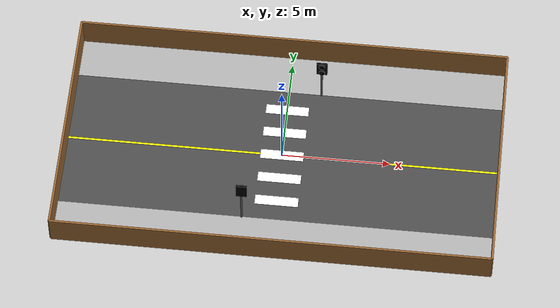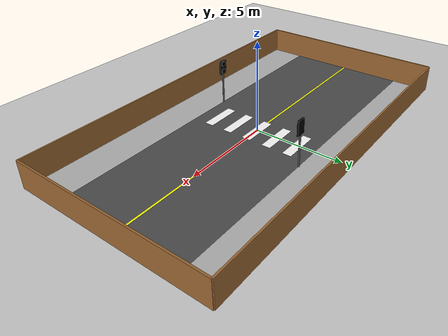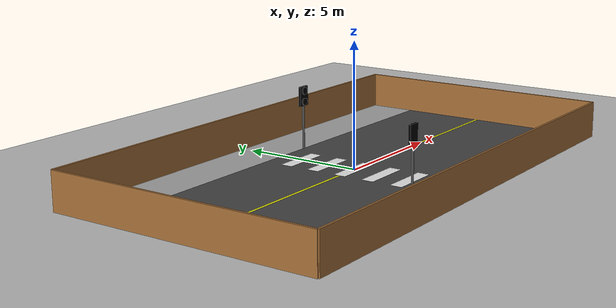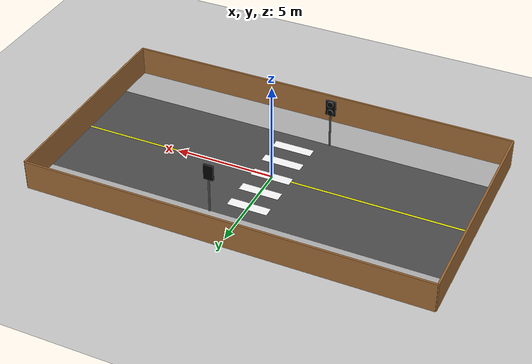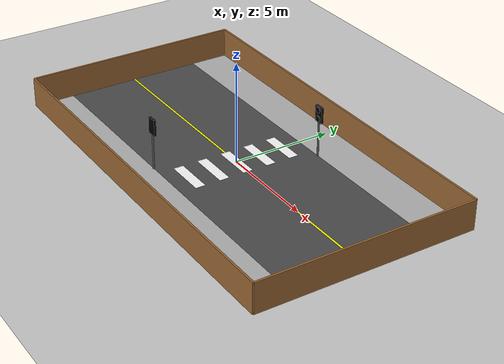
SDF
<?xml version="1.0" ?>
<sdf version="1.6">
  <world name="crossroad">

    <!-- GUI Camera Configuration -->
    <gui>
      <camera name="user_camera">
        <pose>-2.0 -10.0 10.0 0 0.6 1.57</pose>
      </camera>
    </gui>

    <!-- Physics Configuration -->
    <physics name='default_physics' default='0' type='ode'>
      <max_step_size>0.001</max_step_size>
      <real_time_factor>1</real_time_factor>
      <real_time_update_rate>1000</real_time_update_rate>
    </physics>

    <!-- Scene Configuration -->
    <scene>
      <ambient>0.4 0.4 0.4 1</ambient>
      <background>0.7 0.7 0.7 1</background>
      <shadows>1</shadows>
      <grid>false</grid>
    </scene>

    <!-- Sun Light -->
    <light name='sun' type='directional'>
      <cast_shadows>1</cast_shadows>
      <pose>0 0 10 0 0 0</pose>
      <diffuse>0.8 0.8 0.8 1</diffuse>
      <specular>0.2 0.2 0.2 1</specular>
      <attenuation>
        <range>1000</range>
        <constant>0.9</constant>
        <linear>0.01</linear>
        <quadratic>0.001</quadratic>
      </attenuation>
      <direction>-0.5 0.1 -0.9</direction>
    </light>

    <!-- Ground Plane -->
    <model name='ground_plane'>
      <static>1</static>
      <link name='link'>
        <collision name='collision'>
          <geometry>
            <plane>
              <normal>0 0 1</normal>
              <size>100 100</size>
            </plane>
          </geometry>
          <surface>
            <friction>
              <ode>
                <mu>100</mu>
                <mu2>50</mu2>
              </ode>
            </friction>
          </surface>
        </collision>
        <visual name='visual'>
          <cast_shadows>0</cast_shadows>
          <geometry>
            <plane>
              <normal>0 0 1</normal>
              <size>100 100</size>
            </plane>
          </geometry>
          <material>
            <script>
              <uri>file://media/materials/scripts/gazebo.material</uri>
              <name>Gazebo/Grey</name>
            </script>
          </material>
        </visual>
      </link>
    </model>

    <!-- Main Road (Horizontal) -->
    <model name='road_horizontal'>
      <static>1</static>
      <link name='link'>
        <pose>0 0 0.001 0 0 0</pose>
        <collision name='collision'>
          <geometry>
            <box>
              <size>20 7.0 0.01</size>
            </box>
          </geometry>
        </collision>
        <visual name='visual'>
          <geometry>
            <box>
              <size>20 7.0 0.01</size>
            </box>
          </geometry>
          <material>
            <ambient>0.3 0.3 0.3 1</ambient>
            <diffuse>0.3 0.3 0.3 1</diffuse>
          </material>
        </visual>
      </link>
    </model>

    <!-- Road Center Line (Yellow) -->
    <model name='road_center_line'>
      <static>1</static>
      <link name='link'>
        <pose>0 0 0.002 0 0 0</pose>
        <visual name='visual'>
          <geometry>
            <box>
              <size>20 0.1 0.01</size>
            </box>
          </geometry>
          <material>
            <ambient>1 1 0 1</ambient>
            <diffuse>1 1 0 1</diffuse>
          </material>
        </visual>
      </link>
    </model>

    <!-- Left Sidewalk -->
    <model name='sidewalk_left'>
      <static>1</static>
      <link name='link'>
        <pose>0 -4.5 0.001 0 0 0</pose>
        <collision name='collision'>
          <geometry>
            <box>
              <size>20 2.0 0.01</size>
            </box>
          </geometry>
        </collision>
        <visual name='visual'>
          <geometry>
            <box>
              <size>20 2.0 0.01</size>
            </box>
          </geometry>
          <material>
            <ambient>0.7 0.7 0.7 1</ambient>
            <diffuse>0.7 0.7 0.7 1</diffuse>
          </material>
        </visual>
      </link>
    </model>

    <!-- Right Sidewalk -->
    <model name='sidewalk_right'>
      <static>1</static>
      <link name='link'>
        <pose>0 4.5 0.001 0 0 0</pose>
        <collision name='collision'>
          <geometry>
            <box>
              <size>20 2.0 0.01</size>
            </box>
          </geometry>
        </collision>
        <visual name='visual'>
          <geometry>
            <box>
              <size>20 2.0 0.01</size>
            </box>
          </geometry>
          <material>
            <ambient>0.7 0.7 0.7 1</ambient>
            <diffuse>0.7 0.7 0.7 1</diffuse>
          </material>
        </visual>
      </link>
    </model>

    <!-- Pedestrian Crosswalk (Zebra Crossing) -->
    <!-- Horizontal white stripes forming the zebra pattern -->
    <model name='crosswalk_stripe_1'>
      <static>1</static>
      <link name='link'>
        <pose>0 -2.5 0.003 0 0 0</pose>
        <visual name='visual'>
          <geometry>
            <box>
              <size>2.0 0.5 0.01</size>
            </box>
          </geometry>
          <material>
            <ambient>1 1 1 1</ambient>
            <diffuse>1 1 1 1</diffuse>
          </material>
        </visual>
      </link>
    </model>

    <model name='crosswalk_stripe_2'>
      <static>1</static>
      <link name='link'>
        <pose>0 -1.25 0.003 0 0 0</pose>
        <visual name='visual'>
          <geometry>
            <box>
              <size>2.0 0.5 0.01</size>
            </box>
          </geometry>
          <material>
            <ambient>1 1 1 1</ambient>
            <diffuse>1 1 1 1</diffuse>
          </material>
        </visual>
      </link>
    </model>

    <model name='crosswalk_stripe_3'>
      <static>1</static>
      <link name='link'>
        <pose>0 0 0.003 0 0 0</pose>
        <visual name='visual'>
          <geometry>
            <box>
              <size>2.0 0.5 0.01</size>
            </box>
          </geometry>
          <material>
            <ambient>1 1 1 1</ambient>
            <diffuse>1 1 1 1</diffuse>
          </material>
        </visual>
      </link>
    </model>

    <model name='crosswalk_stripe_4'>
      <static>1</static>
      <link name='link'>
        <pose>0 1.25 0.003 0 0 0</pose>
        <visual name='visual'>
          <geometry>
            <box>
              <size>2.0 0.5 0.01</size>
            </box>
          </geometry>
          <material>
            <ambient>1 1 1 1</ambient>
            <diffuse>1 1 1 1</diffuse>
          </material>
        </visual>
      </link>
    </model>

    <model name='crosswalk_stripe_5'>
      <static>1</static>
      <link name='link'>
        <pose>0 2.5 0.003 0 0 0</pose>
        <visual name='visual'>
          <geometry>
            <box>
              <size>2.0 0.5 0.01</size>
            </box>
          </geometry>
          <material>
            <ambient>1 1 1 1</ambient>
            <diffuse>1 1 1 1</diffuse>
          </material>
        </visual>
      </link>
    </model>

    <!-- Traffic Light at Crosswalk - Left Side -->
    <model name="traffic_light_left">
      <include>
        <uri>model://gazebo_traffic_light</uri>
      </include>
      <pose>-1.5 -3.5 0 0 0 1.5707</pose>
      <plugin name="traffic_light_plugin" filename="libgazebo_traffic_light.so" />
    </model>

    <!-- Traffic Light at Crosswalk - Right Side -->
    <model name="traffic_light_right">
      <include>
        <uri>model://gazebo_traffic_light</uri>
      </include>
      <pose>1.5 3.5 0 0 0 -1.5707</pose>
      <plugin name="traffic_light_plugin" filename="libgazebo_traffic_light.so" />
    </model>

    <!-- Boundary Walls Along Sidewalks -->
    <!-- Left Wall (outer edge of left sidewalk) -->
    <model name='wall_left'>
      <static>1</static>
      <link name='link'>
        <pose>0 -5.5 0.75 0 0 0</pose>
        <collision name='collision'>
          <geometry>
            <box>
              <size>20 0.1 1.5</size>
            </box>
          </geometry>
        </collision>
        <visual name='visual'>
          <geometry>
            <box>
              <size>20 0.1 1.5</size>
            </box>
          </geometry>
          <material>
            <ambient>0.6 0.4 0.2 1</ambient>
            <diffuse>0.6 0.4 0.2 1</diffuse>
          </material>
        </visual>
      </link>
    </model>

    <!-- Right Wall (outer edge of right sidewalk) -->
    <model name='wall_right'>
      <static>1</static>
      <link name='link'>
        <pose>0 5.5 0.75 0 0 0</pose>
        <collision name='collision'>
          <geometry>
            <box>
              <size>20 0.1 1.5</size>
            </box>
          </geometry>
        </collision>
        <visual name='visual'>
          <geometry>
            <box>
              <size>20 0.1 1.5</size>
            </box>
          </geometry>
          <material>
            <ambient>0.6 0.4 0.2 1</ambient>
            <diffuse>0.6 0.4 0.2 1</diffuse>
          </material>
        </visual>
      </link>
    </model>

    <!-- Front Wall (start side) -->
    <model name='wall_front'>
      <static>1</static>
      <link name='link'>
        <pose>-10 0 0.75 0 0 0</pose>
        <collision name='collision'>
          <geometry>
            <box>
              <size>0.1 11 1.5</size>
            </box>
          </geometry>
        </collision>
        <visual name='visual'>
          <geometry>
            <box>
              <size>0.1 11 1.5</size>
            </box>
          </geometry>
          <material>
            <ambient>0.6 0.4 0.2 1</ambient>
            <diffuse>0.6 0.4 0.2 1</diffuse>
          </material>
        </visual>
      </link>
    </model>

    <!-- Back Wall (goal side) -->
    <model name='wall_back'>
      <static>1</static>
      <link name='link'>
        <pose>10 0 0.75 0 0 0</pose>
        <collision name='collision'>
          <geometry>
            <box>
              <size>0.1 11 1.5</size>
            </box>
          </geometry>
        </collision>
        <visual name='visual'>
          <geometry>
            <box>
              <size>0.1 11 1.5</size>
            </box>
          </geometry>
          <material>
            <ambient>0.6 0.4 0.2 1</ambient>
            <diffuse>0.6 0.4 0.2 1</diffuse>
          </material>
        </visual>
      </link>
    </model>

    <!-- Overhead Static Camera for Video Recording -->
    <model name='overhead_camera'>
      <static>true</static>
      <pose>0 0 15 0 1.57 0</pose>
      <link name='link'>
        <sensor name='camera' type='camera'>
          <camera>
            <horizontal_fov>1.047</horizontal_fov>
            <image>
              <width>640</width>
              <height>480</height>
              <format>R8G8B8</format>
            </image>
            <clip>
              <near>0.1</near>
              <far>100</far>
            </clip>
          </camera>
          <always_on>1</always_on>
          <update_rate>30</update_rate>
          <visualize>false</visualize>
          <plugin name='camera_controller' filename='libgazebo_ros_camera.so'>
            <alwaysOn>true</alwaysOn>
            <updateRate>0.0</updateRate>
            <cameraName>overhead_camera</cameraName>
            <imageTopicName>/overhead_camera/image_raw</imageTopicName>
            <cameraInfoTopicName>/overhead_camera/camera_info</cameraInfoTopicName>
            <frameName>overhead_camera_link</frameName>
            <hackBaseline>0.07</hackBaseline>
            <distortionK1>0.0</distortionK1>
            <distortionK2>0.0</distortionK2>
            <distortionK3>0.0</distortionK3>
            <distortionT1>0.0</distortionT1>
            <distortionT2>0.0</distortionT2>
          </plugin>
        </sensor>
      </link>
    </model>

  </world>
</sdf>

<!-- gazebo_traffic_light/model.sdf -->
<sdf version="1.7">
  <model name="gazebo_traffic_light">
    <static>false</static>

    <link name="pole">
      <gravity>false</gravity>
      <pose>0 0 0.9 0 0 0</pose>
      <visual name="visual">
        <geometry>
          <cylinder>
            <radius>0.05</radius>
            <length>1.8</length>
          </cylinder>
        </geometry>
        <material>
          <ambient>0.3 0.3 0.3 1</ambient>
          <diffuse>0.3 0.3 0.3 1</diffuse>
          <specular>0.1 0.1 0.1 1</specular>
        </material>
      </visual>
      <collision name="collision">
        <geometry>
          <cylinder>
            <radius>0.05</radius>
            <length>1.8</length>
          </cylinder>
        </geometry>
      </collision>
    </link>

    <link name="light_fixture">
      <gravity>false</gravity>
      <pose>0 0 1.8 0 0 0</pose>
      <visual name="visual">
        <pose>0 0 0.4 0 0 0</pose>
        <geometry>
          <box>
            <size>0.1 0.5 0.8</size>
          </box>
        </geometry>
        <material>
          <ambient>0 0 0 1</ambient>
          <diffuse>0 0 0 1</diffuse>
          <specular>0 0 0 1</specular>
        </material>
      </visual>
      <collision name="collision">
        <pose>0 0 0.4 0 0 0</pose>
        <geometry>
          <box>
            <size>0.1 0.5 0.8</size>
          </box>
        </geometry>
      </collision>
    </link>

    <link name="green_off">
      <gravity>false</gravity>
      <pose>0.075 0 1.975 0 1.5707 0</pose>
      <collision name="collision">
        <geometry>
          <cylinder>
            <radius>0.15</radius>
            <length>0.05</length>
          </cylinder>
        </geometry>
      </collision>

      <visual name="visual">
        <geometry>
          <cylinder>
            <radius>0.15</radius>
            <length>0.05</length>
          </cylinder>
        </geometry>
        <material>
          <ambient>0 1 0 1</ambient>
          <diffuse>0 0 0 1</diffuse>
          <specular>0 0 0 1</specular>
          <emissive>0 0 0 1</emissive>
        </material>
      </visual>
    </link>

    <link name="green_on">
      <gravity>false</gravity>
      <pose>0 0 1.975 0 1.5707 0</pose>
      <collision name="collision">
        <geometry>
          <cylinder>
            <radius>0.15</radius>
            <length>0.002</length>
          </cylinder>
        </geometry>
      </collision>

      <visual name="visual">
        <geometry>
          <cylinder>
            <radius>0.15</radius>
            <length>0.002</length>
          </cylinder>
        </geometry>
        <material>
          <ambient>0 0 0 1</ambient>
          <diffuse>0 0 0 1</diffuse>
          <specular>0 0 0 1</specular>
          <emissive>0 1 0 1</emissive>
        </material>
      </visual>
    </link>

    <link name="red_off">
      <gravity>false</gravity>
      <pose>0.075 0 2.425 0 1.5707 0</pose>
      <collision name="collision">
        <geometry>
          <cylinder>
            <radius>0.15</radius>
            <length>0.05</length>
          </cylinder>
        </geometry>
      </collision>

      <visual name="visual">
        <geometry>
          <cylinder>
            <radius>0.15</radius>
            <length>0.05</length>
          </cylinder>
        </geometry>
        <material>
          <ambient>1 0 0 1</ambient>
          <diffuse>0 0 0 1</diffuse>
          <specular>0 0 0 1</specular>
          <emissive>0 0 0 1</emissive>
        </material>
      </visual>
    </link>

    <link name="red_on">
      <gravity>false</gravity>
      <pose>0 0 2.425 0 1.5707 0</pose>
      <collision name="collision">
        <geometry>
          <cylinder>
            <radius>0.15</radius>
            <length>0.002</length>
          </cylinder>
        </geometry>
      </collision>

      <visual name="visual">
        <geometry>
          <cylinder>
            <radius>0.15</radius>
            <length>0.002</length>
          </cylinder>
        </geometry>
        <material>
          <ambient>0 0 0 1</ambient>
          <diffuse>0 0 0 1</diffuse>
          <specular>0 0 0 1</specular>
          <emissive>1 0 0 1</emissive>
        </material>
      </visual>
    </link>

    <joint name="green_switch" type="prismatic" >
      <parent>green_off</parent>
      <child>green_on</child>
      <axis>
        <xyz>0 0 1</xyz>
        <limit>
          <lower>0</lower>
          <upper>0.101</upper>
        </limit>
      </axis>
    </joint>

    <joint name="pole_to_fixture" type="fixed" >
      <parent>pole</parent>
      <child>light_fixture</child>
    </joint>

    <joint name="green_base" type="fixed" >
      <parent>light_fixture</parent>
      <child>green_off</child>
    </joint>

    <joint name="red_switch" type="prismatic" >
      <parent>red_off</parent>
      <child>red_on</child>
      <axis>
        <xyz>0 0 1</xyz>
        <limit>
          <lower>0</lower>
          <upper>0.101</upper>
        </limit>
      </axis>
    </joint>

    <joint name="red_base" type="fixed" >
      <parent>light_fixture</parent>
      <child>red_off</child>
    </joint>
  </model>
</sdf>
